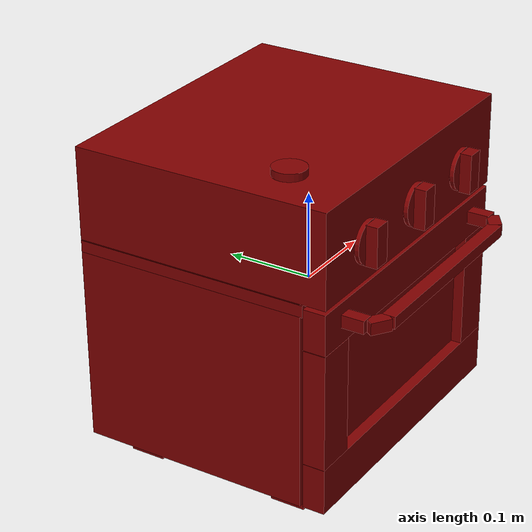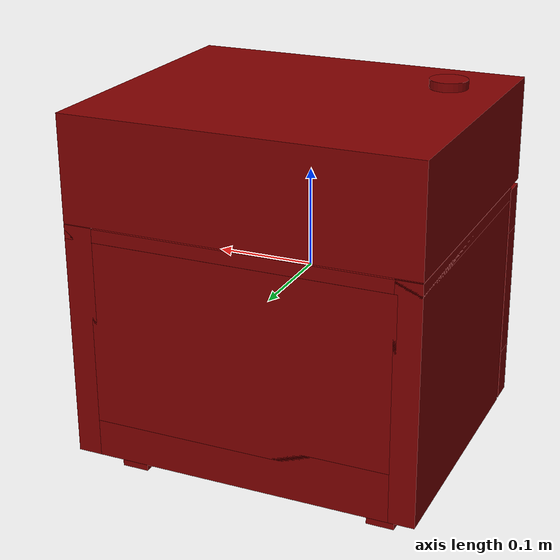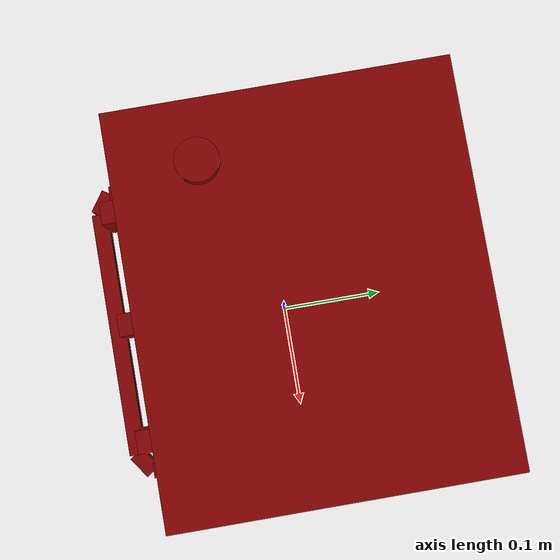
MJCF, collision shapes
<?xml version='1.0' encoding='UTF-8'?>
<mujoco model="model">
  <option timestep="0.002" gravity="0.0 0.0 -9.81"/>
  <compiler angle="radian"/>
  <asset>
    <mesh file="visuals/door.obj" name="door_vis"/>
    <mesh file="visuals/knob_doneness.obj" name="knob_doneness_vis"/>
    <mesh file="visuals/knob_temp.obj" name="knob_temp_vis"/>
    <mesh file="visuals/knob_time.obj" name="knob_time_vis"/>
    <mesh file="visuals/rack0.obj" name="rack0_vis"/>
    <mesh file="visuals/Body001.obj" name="Body001_vis"/>
    <mesh file="visuals/window.obj" name="window_vis"/>
    <texture file="visuals/T_BC001.png" name="Body001_material" type="2d"/>
    <material name="Body001_material" rgba="1 1 1 1.0" texture="Body001_material" shininess="0.5" specular="1"/>
    <texture file="visuals/T_BC001.png" name="door_material" type="2d"/>
    <material name="door_material" rgba="1 1 1 1.0" texture="door_material" shininess="0.5" specular="0.3103448502657381"/>
    <material name="window_material" rgba="0.021757163107395172 0.021757163107395172 0.021757163107395172 0.800000011920929" shininess="0.4472135901451111" specular="0.3103448502657381"/>
    <texture file="visuals/T_BC001.png" name="knob_doneness_material" type="2d"/>
    <material name="knob_doneness_material" rgba="1 1 1 1.0" texture="knob_doneness_material" shininess="0.5" specular="1"/>
    <texture file="visuals/T_BC001.png" name="knob_temp_material" type="2d"/>
    <material name="knob_temp_material" rgba="1 1 1 1.0" texture="knob_temp_material" shininess="0.5" specular="1"/>
    <texture file="visuals/T_BC001.png" name="knob_time_material" type="2d"/>
    <material name="knob_time_material" rgba="1 1 1 1.0" texture="knob_time_material" shininess="0.5" specular="1"/>
    <texture file="visuals/T_BC001.png" name="rack0_material" type="2d"/>
    <material name="rack0_material" rgba="1 1 1 1.0" texture="rack0_material" shininess="0.1" specular="2"/>
  </asset>
  <default>
    <default class="visual">
      <geom conaffinity="0" contype="0" group="1" type="mesh"/>
    </default>
    <default class="collision">
      <geom group="0" rgba="0.5 0 0 0.5"/>
    </default>
    <default class="spawn">
      <geom group="0" rgba="1 1 1 0.5" contype="0" conaffinity="0"/>
      <site group="0" rgba="1 1 1 0.5"/>
    </default>
    <default class="region">
      <geom group="1" conaffinity="0" contype="0" rgba="0 1 0 0"/>
    </default>
  </default>
  <worldbody>
    <body>
      <body name="object">
        <geom mesh="Body001_vis" type="mesh" solimp="0.998 0.998 0.001" solref="0.001 1" friction="0.95 0.3 0.1" class="visual" material="Body001_material"/>
        <geom class="collision" type="box" pos="-0.00000001 0.02272006 0.12798309" size="0.17448489367961884 0.14800481498241425 0.05254647135734558" quat="1.0 0.0 0.0 0.0"/>
        <geom class="collision" type="box" pos="0.16007210 0.03728922 -0.04388251" size="0.014412807300686836 0.1334356665611267 0.11869251728057861" quat="1.0 0.0 0.0 0.0"/>
        <geom class="collision" type="box" pos="-0.16175087 0.03728922 -0.04388251" size="0.012734025716781616 0.1334356665611267 0.11869251728057861" quat="1.0 0.0 0.0 0.0"/>
        <geom class="collision" type="box" pos="-0.00108027 0.03728922 -0.13771476" size="0.15106576681137085 0.1334356665611267 0.024860244244337082" quat="1.0 0.0 0.0 0.0"/>
        <geom class="collision" type="box" pos="0.13047362 -0.06206644 -0.17682417" size="0.013797158375382423 0.020553654059767723 0.013229581527411938" quat="1.0 0.0 0.0 0.0"/>
        <geom class="collision" type="box" pos="-0.13088968 -0.06206644 -0.17682417" size="0.013797158375382423 0.020553654059767723 0.013229581527411938" quat="1.0 0.0 0.0 0.0"/>
        <geom class="collision" type="box" pos="-0.13088968 0.11990667 -0.17682417" size="0.013797158375382423 0.020553654059767723 0.013229581527411938" quat="1.0 0.0 0.0 0.0"/>
        <geom class="collision" type="box" pos="0.13047362 0.11990667 -0.17682417" size="0.013797158375382423 0.020553654059767723 0.013229581527411938" quat="1.0 0.0 0.0 0.0"/>
        <geom class="collision" type="box" pos="-0.00108027 0.15339508 -0.03179705" size="0.15106576681137085 0.017329802736639977 0.09266500920057297" quat="1.0 0.0 0.0 0.0"/>
        <geom class="collision" type="cylinder" pos="-0.12008297 -0.05085678 0.18588106" size="0.018852870911359787 0.004346936941146851" quat="1.0 0.0 0.0 0.0"/>
        <geom class="collision" type="box" pos="-0.00000001 0.03588265 0.06753710" size="0.17448489367961884 0.13484223186969757 0.006638281047344208" quat="1.0 0.0 0.0 0.0"/>
        <body name="door">
          <joint axis="1.0 0.0 0.0" pos="-0.00040425 -0.10061286 -0.16021864" limited="true" name="door_joint" range="0.0 1.4307963267948966" type="hinge" damping="1" frictionloss="1" armature=".01" stiffness="0.5" springref="-0.5"/>
          <geom mesh="door_vis" type="mesh" solimp="0.998 0.998 0.001" solref="0.001 1" friction="0.95 0.3 0.1" class="visual" material="door_material"/>
          <geom class="collision" type="box" pos="-0.00041651 -0.11221485 0.04770131" size="0.1740684062242508 0.012733486481010914 0.022895297035574913" quat="1.0 0.0 0.0 0.0" name="door_main"/>
          <geom class="collision" type="box" pos="-0.00041651 -0.11221485 -0.13547502" size="0.1740684062242508 0.012733486481010914 0.02649698220193386" quat="1.0 0.0 0.0 0.0"/>
          <geom class="collision" type="box" pos="0.15073443 -0.11221485 -0.04228939" size="0.022917453199625015 0.012733486481010914 0.06640858948230743" quat="1.0 0.0 0.0 0.0"/>
          <geom class="collision" type="box" pos="-0.15170371 -0.11221485 -0.04228939" size="0.02278120629489422 0.012733486481010914 0.06640858948230743" quat="1.0 0.0 0.0 0.0"/>
          <geom class="collision" type="box" pos="0.00007535 -0.16387016 0.04952180" size="0.11858848482370377 0.007239746395498514 0.0067580463364720345" quat="1.0 0.0 0.0 0.0" name="door_handle_main"/>
          <geom class="collision" type="box" pos="0.12718798 -0.15800486 0.04952180" size="0.011782891117036343 0.007239751052111387 0.0067580463364720345" quat="0.9546672701835632 0.0 0.0 0.2976749837398529"/>
          <geom class="collision" type="box" pos="0.13577394 -0.13777704 0.05033479" size="0.0072519825771451 0.012733486481010914 0.007151295896619558" quat="1.0 0.0 0.0 0.0"/>
          <geom class="collision" type="box" pos="-0.13682040 -0.13777704 0.05033479" size="0.0072519825771451 0.012733486481010914 0.007151295896619558" quat="1.0 0.0 0.0 0.0"/>
          <geom class="collision" type="box" pos="-0.12823444 -0.15800486 0.04952180" size="0.011782891117036343 0.0072397505864501 0.0067580463364720345" quat="0.954667329788208 0.0 -0.0 -0.29767486453056335"/>
          <body name="window">
            <geom mesh="window_vis" type="mesh" solimp="0.998 0.998 0.001" solref="0.001 1" friction="0.95 0.3 0.1" class="visual" material="window_material"/>
            <geom class="collision" type="box" pos="-0.00040422 -0.11185569 -0.04209067" size="0.13204176723957062 0.0008127555483952165 0.06750289350748062" quat="1.0 0.0 0.0 0.0"/>
          </body>
        </body>
        <body name="knob_doneness">
          <joint axis="0.0 1.0 0.0" pos="0.10064416 -0.13287525 0.12071139" limited="true" name="knob_doneness_joint" range="0.0 4.71238898038469" type="hinge" damping="0.05" frictionloss="0.75" armature="1"/>
          <geom mesh="knob_doneness_vis" type="mesh" solimp="0.998 0.998 0.001" solref="0.001 1" friction="0.95 0.3 0.1" class="visual" material="knob_doneness_material"/>
          <geom class="collision" type="cylinder" pos="0.10066740 -0.12915023 0.12072199" size="0.023851629346609116 0.002440948272123933" quat="0.7071067094802856 0.7071068286895752 0.0 0.0" friction="100 0.5 0.01"/>
          <geom class="collision" type="box" pos="0.10062587 -0.13799687 0.12041463" size="0.009907152503728867 0.006859925575554371 0.022295232862234116" quat="1.0 0.0 0.0 0.0" name="knob_doneness_main" friction="100 0.5 0.01"/>
        </body>
        <body name="knob_temp">
          <joint axis="0.0 1.0 0.0" pos="-0.00087003 -0.13294226 0.12034318" limited="true" name="knob_temp_joint" range="0.0 3.9269908169872414" type="hinge" damping="0.05" armature="1" frictionloss="0.75"/>
          <geom mesh="knob_temp_vis" type="mesh" solimp="0.998 0.998 0.001" solref="0.001 1" friction="0.95 0.3 0.1" class="visual" material="knob_temp_material"/>
          <geom class="collision" type="cylinder" pos="-0.00072928 -0.12920167 0.12037640" size="0.023851629346609116 0.002440948272123933" quat="0.7071067094802856 0.7071068286895752 0.0 0.0" friction="100 0.5 0.01"/>
          <geom class="collision" type="box" pos="-0.00107895 -0.13799687 0.12041463" size="0.009907152503728867 0.006859925575554371 0.022295232862234116" quat="1.0 0.0 0.0 0.0" name="knob_temp_main" friction="100 0.5 0.01"/>
        </body>
        <body name="knob_time">
          <joint axis="0.0 1.0 0.0" pos="-0.10013335 -0.13287525 0.12041463" limited="true" name="knob_time_joint" range="0.0 5.061454830783556" type="hinge" damping="0.05" frictionloss="0.75" armature="1"/>
          <geom mesh="knob_time_vis" type="mesh" solimp="0.998 0.998 0.001" solref="0.001 1" friction="0.95 0.3 0.1" class="visual" material="knob_time_material"/>
          <geom class="collision" type="cylinder" pos="-0.10018314 -0.12935688 0.12037640" size="0.023851629346609116 0.002440948272123933" quat="0.7071067094802856 0.7071068286895752 0.0 0.0" friction="100 0.5 0.01"/>
          <geom class="collision" type="box" pos="-0.10013334 -0.13799687 0.12041463" size="0.009907152503728867 0.006859925575554371 0.022295232862234116" quat="1.0 0.0 0.0 0.0" name="knob_time_main" friction="100 0.5 0.01"/>
        </body>
        <body name="rack0">
          <geom class="region" name="reg_rack0" type="box" pos="-0.002246275000000006 0.005007224999999997 -0.012154429999999997" size="0.118231505 0.070620615 0.07366643"/>
          <joint axis="0.0 -1.0 0.0" pos="-0.00220429 0.00410681 -0.08006415" limited="true" name="rack0_joint" range="0.0 0.15" type="slide" damping="1" frictionloss="1" armature=".01" stiffness="0.05"/>
          <geom mesh="rack0_vis" type="mesh" solimp="0.998 0.998 0.001" solref="0.001 1" friction="0.95 0.3 0.1" class="visual" material="rack0_material"/>
          <geom class="collision" type="box" pos="-0.00181768 0.00406032 -0.08660118" size="0.12071013450622559 0.07201956957578659 0.0015690032159909606" quat="1.0 0.0 0.0 0.0"/>
          <geom class="collision" type="box" pos="-0.14514127 0.00406032 -0.07314283" size="0.002135306829586625 0.07201956957578659 0.0020079300738871098" quat="1.0 0.0 0.0 0.0"/>
          <geom class="collision" type="box" pos="-0.13190224 0.07458864 -0.07700156" size="0.01336704846471548 0.0014912441838532686 0.003435014048591256" quat="0.9227885603904724 2.2248139864010667e-15 0.385306715965271 5.1769355025044206e-08"/>
          <geom class="collision" type="box" pos="-0.13190224 -0.06630195 -0.07700156" size="0.01336704846471548 0.0014912441838532686 0.003435014048591256" quat="0.9227885603904724 2.2248139864010667e-15 0.385306715965271 5.1769355025044206e-08"/>
          <geom class="collision" type="box" pos="0.12734095 -0.06630195 -0.07700156" size="0.013367047533392906 0.0014912441838532686 0.0034350142814219" quat="0.9227885603904724 1.0946873392296812e-14 -0.3853067457675934 -5.1769358577757885e-08"/>
          <geom class="collision" type="box" pos="0.12734095 0.07458864 -0.07700156" size="0.013367047533392906 0.0014912441838532686 0.0034350142814219" quat="0.9227885603904724 1.0946873392296812e-14 -0.3853067457675934 -5.1769358577757885e-08"/>
          <geom class="collision" type="box" pos="0.14057998 0.00406032 -0.07314283" size="0.002135306829586625 0.07201956957578659 0.0020079300738871098" quat="1.0 0.0 0.0 0.0"/>
        </body>
        <geom class="region" name="reg_main" type="box" pos="5.0994999999998125e-05 0.023709474999999994 -0.000264285000000003" size="0.186088545 0.15870885499999998 0.202614455"/>
      </body>
    </body>
  </worldbody>
  <actuator>
    <motor name="door_joint_actuator" joint="door_joint" gear="50"/>
    <motor name="knob_doneness_joint_actuator" joint="knob_doneness_joint" gear="50"/>
    <motor name="knob_temp_joint_actuator" joint="knob_temp_joint" gear="50"/>
    <motor name="knob_time_joint_actuator" joint="knob_time_joint" gear="50"/>
    <motor name="rack0_joint_actuator" joint="rack0_joint" gear="50"/>
  </actuator>
</mujoco>
